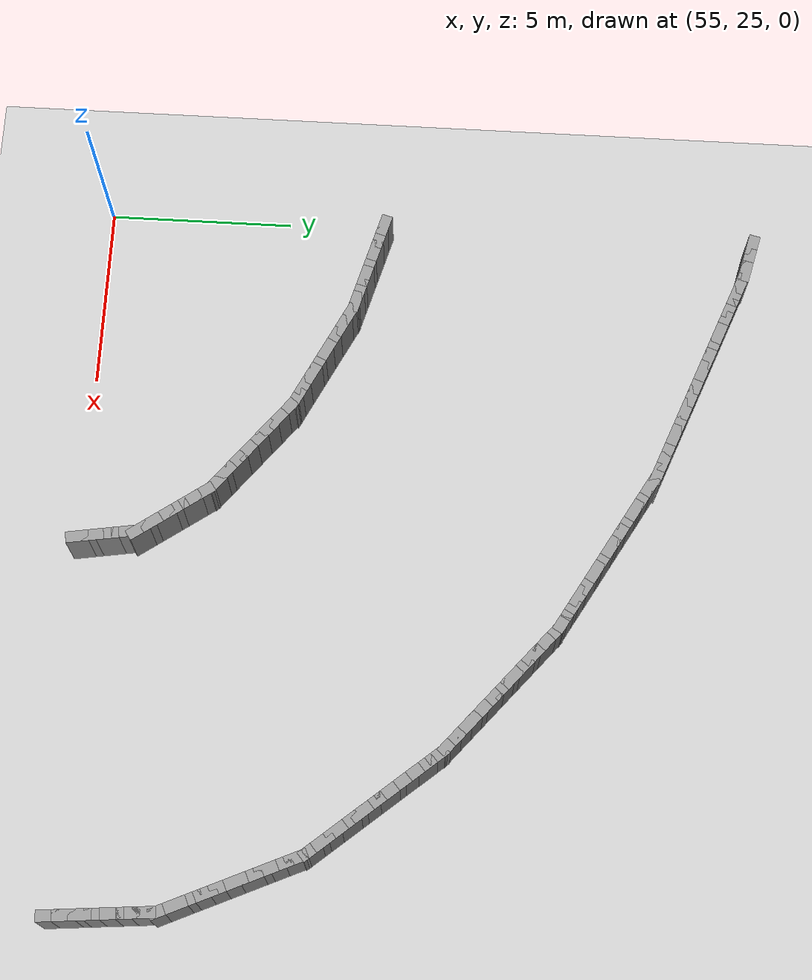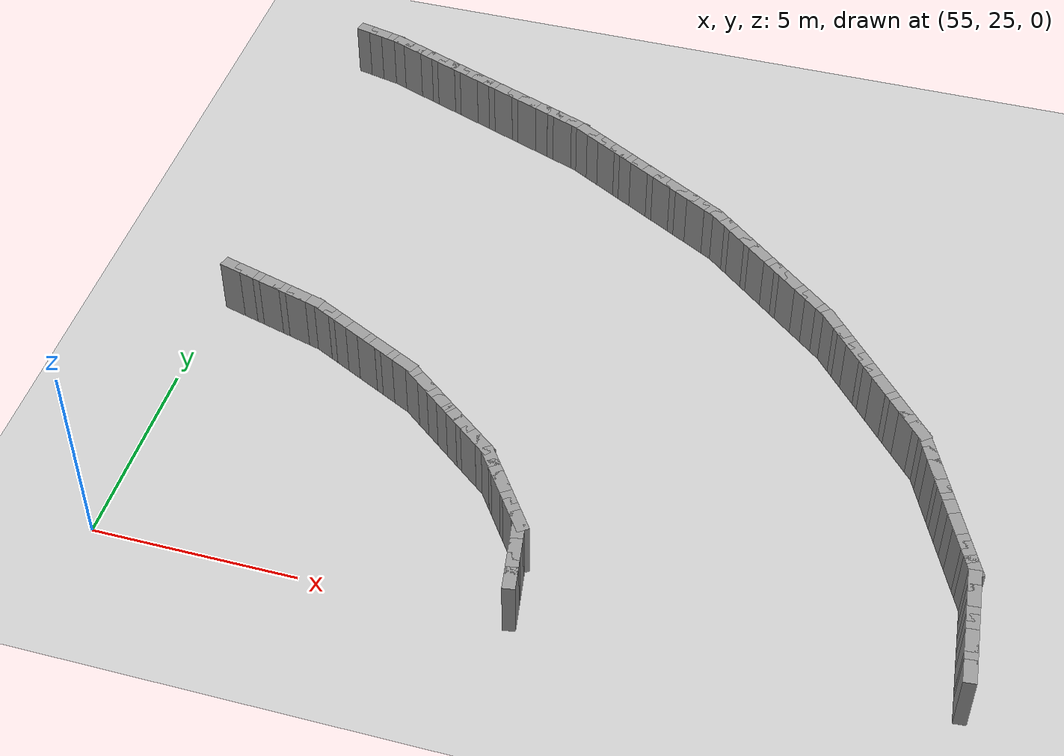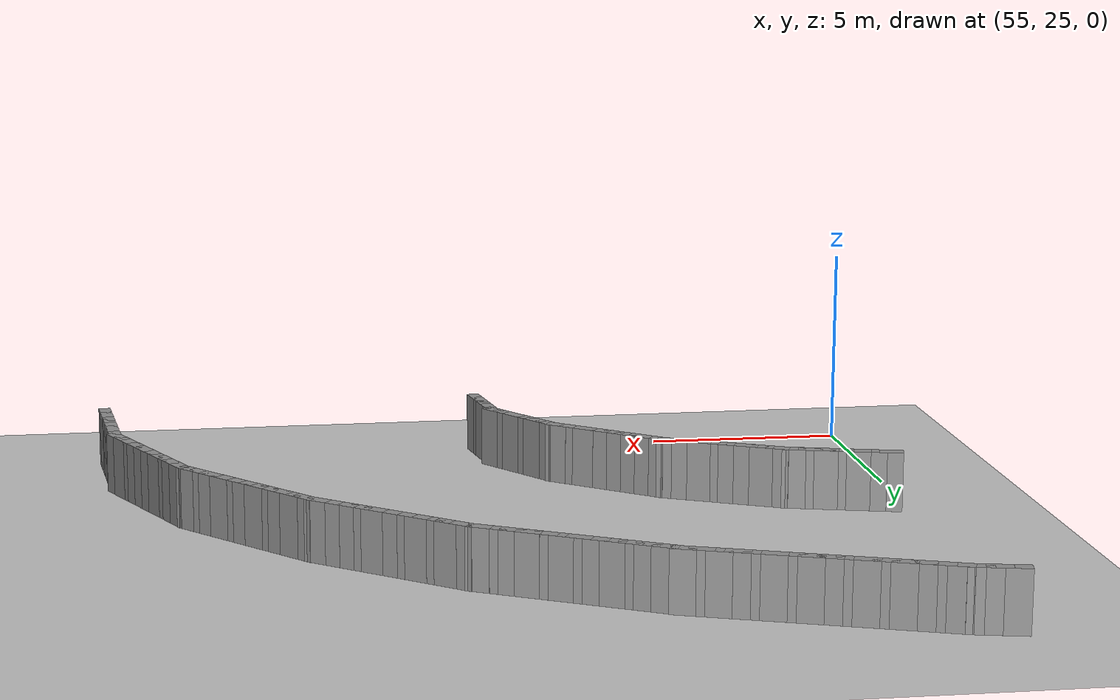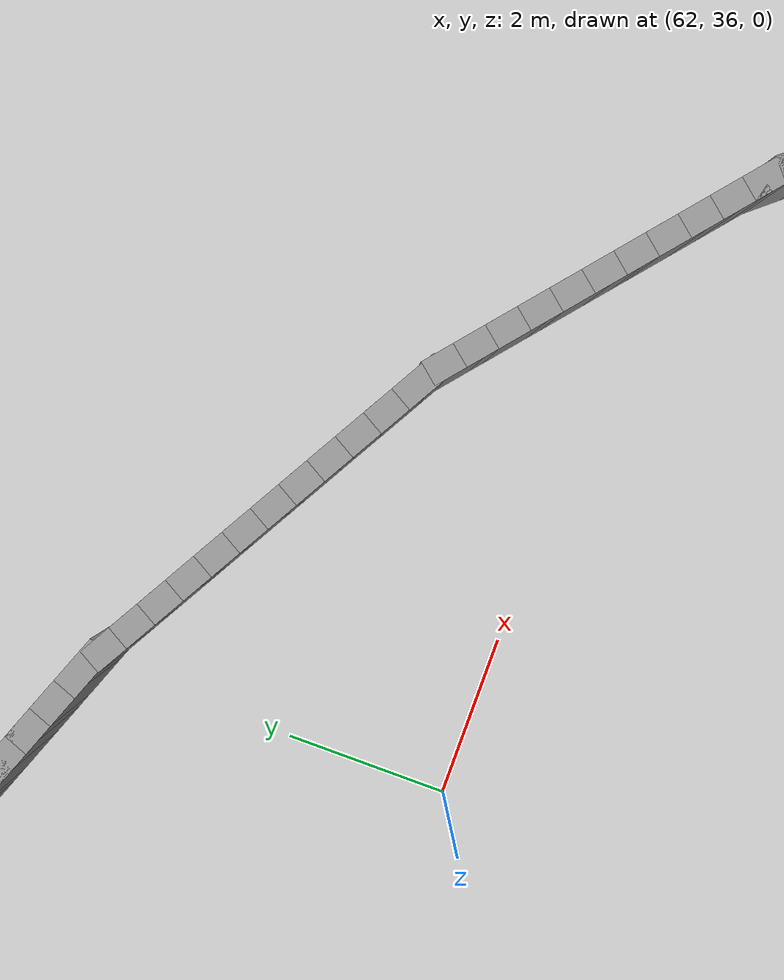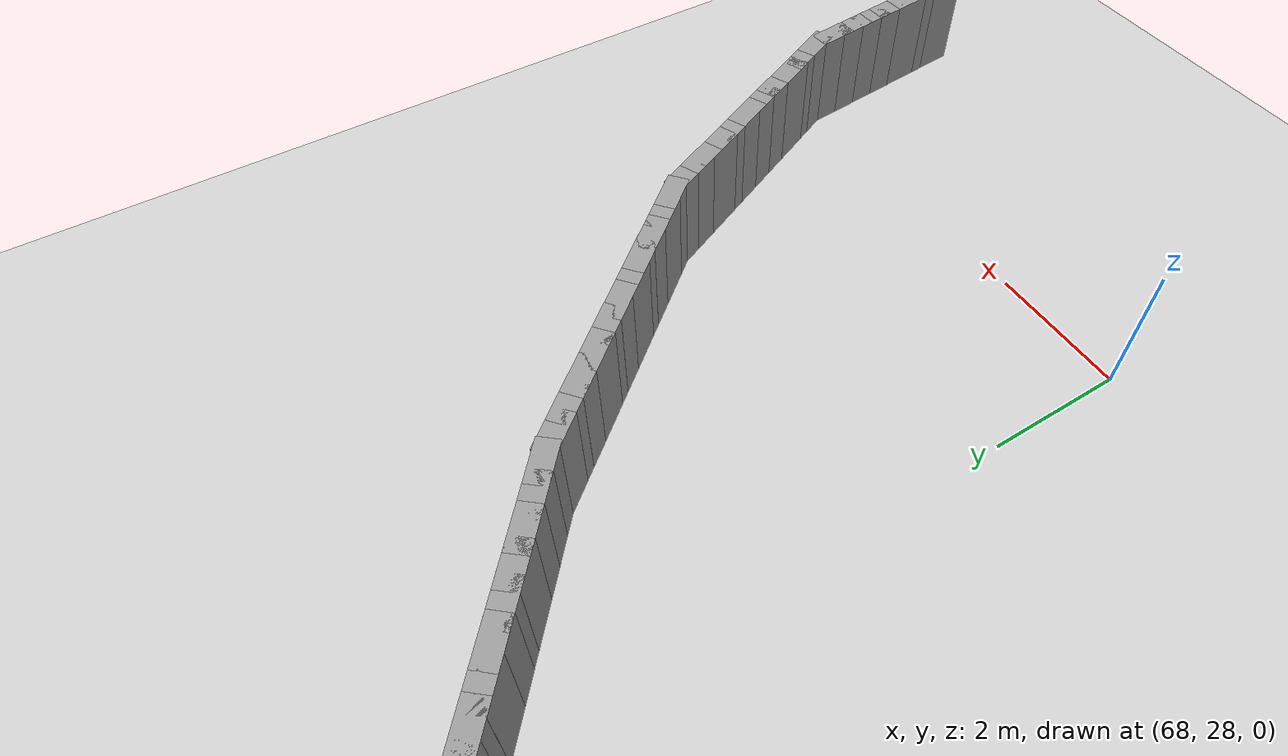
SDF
<sdf version="1.5">
 <world name="ellipse_loop">
  <include><uri>model://sun</uri></include>
  <include><uri>model://ground_plane</uri></include>
  <model name="curbL_227">
   <static>true</static>
   <pose>74.763 25.502 0.750 0 0 1.659</pose>
   <link name="link">
    <collision name="col"><geometry><box><size>0.600 0.300 1.500</size></box></geometry></collision>
    <visual name="vis">
     <geometry><box><size>0.600 0.300 1.500</size></box></geometry>
     <material><ambient>0.6 0.6 0.6 1</ambient><diffuse>0.6 0.6 0.6 1</diffuse></material>
    </visual>
   </link>
  </model>
  <model name="curbL_228">
   <static>true</static>
   <pose>74.728 25.900 0.750 0 0 1.659</pose>
   <link name="link">
    <collision name="col"><geometry><box><size>0.600 0.300 1.500</size></box></geometry></collision>
    <visual name="vis">
     <geometry><box><size>0.600 0.300 1.500</size></box></geometry>
     <material><ambient>0.6 0.6 0.6 1</ambient><diffuse>0.6 0.6 0.6 1</diffuse></material>
    </visual>
   </link>
  </model>
  <model name="curbL_229">
   <static>true</static>
   <pose>74.692 26.298 0.750 0 0 1.659</pose>
   <link name="link">
    <collision name="col"><geometry><box><size>0.600 0.300 1.500</size></box></geometry></collision>
    <visual name="vis">
     <geometry><box><size>0.600 0.300 1.500</size></box></geometry>
     <material><ambient>0.6 0.6 0.6 1</ambient><diffuse>0.6 0.6 0.6 1</diffuse></material>
    </visual>
   </link>
  </model>
  <model name="curbL_230">
   <static>true</static>
   <pose>74.657 26.697 0.750 0 0 1.659</pose>
   <link name="link">
    <collision name="col"><geometry><box><size>0.600 0.300 1.500</size></box></geometry></collision>
    <visual name="vis">
     <geometry><box><size>0.600 0.300 1.500</size></box></geometry>
     <material><ambient>0.6 0.6 0.6 1</ambient><diffuse>0.6 0.6 0.6 1</diffuse></material>
    </visual>
   </link>
  </model>
  <model name="curbL_231">
   <static>true</static>
   <pose>74.622 27.095 0.750 0 0 1.659</pose>
   <link name="link">
    <collision name="col"><geometry><box><size>0.600 0.300 1.500</size></box></geometry></collision>
    <visual name="vis">
     <geometry><box><size>0.600 0.300 1.500</size></box></geometry>
     <material><ambient>0.6 0.6 0.6 1</ambient><diffuse>0.6 0.6 0.6 1</diffuse></material>
    </visual>
   </link>
  </model>
  <model name="curbL_232">
   <static>true</static>
   <pose>74.587 27.494 0.750 0 0 1.659</pose>
   <link name="link">
    <collision name="col"><geometry><box><size>0.600 0.300 1.500</size></box></geometry></collision>
    <visual name="vis">
     <geometry><box><size>0.600 0.300 1.500</size></box></geometry>
     <material><ambient>0.6 0.6 0.6 1</ambient><diffuse>0.6 0.6 0.6 1</diffuse></material>
    </visual>
   </link>
  </model>
  <model name="curbL_233">
   <static>true</static>
   <pose>74.552 27.892 0.750 0 0 1.659</pose>
   <link name="link">
    <collision name="col"><geometry><box><size>0.600 0.300 1.500</size></box></geometry></collision>
    <visual name="vis">
     <geometry><box><size>0.600 0.300 1.500</size></box></geometry>
     <material><ambient>0.6 0.6 0.6 1</ambient><diffuse>0.6 0.6 0.6 1</diffuse></material>
    </visual>
   </link>
  </model>
  <model name="curbL_234">
   <static>true</static>
   <pose>74.487 28.283 0.750 0 0 1.997</pose>
   <link name="link">
    <collision name="col"><geometry><box><size>0.600 0.300 1.500</size></box></geometry></collision>
    <visual name="vis">
     <geometry><box><size>0.600 0.300 1.500</size></box></geometry>
     <material><ambient>0.6 0.6 0.6 1</ambient><diffuse>0.6 0.6 0.6 1</diffuse></material>
    </visual>
   </link>
  </model>
  <model name="curbL_235">
   <static>true</static>
   <pose>74.322 28.647 0.750 0 0 1.997</pose>
   <link name="link">
    <collision name="col"><geometry><box><size>0.600 0.300 1.500</size></box></geometry></collision>
    <visual name="vis">
     <geometry><box><size>0.600 0.300 1.500</size></box></geometry>
     <material><ambient>0.6 0.6 0.6 1</ambient><diffuse>0.6 0.6 0.6 1</diffuse></material>
    </visual>
   </link>
  </model>
  <model name="curbL_236">
   <static>true</static>
   <pose>74.156 29.011 0.750 0 0 1.997</pose>
   <link name="link">
    <collision name="col"><geometry><box><size>0.600 0.300 1.500</size></box></geometry></collision>
    <visual name="vis">
     <geometry><box><size>0.600 0.300 1.500</size></box></geometry>
     <material><ambient>0.6 0.6 0.6 1</ambient><diffuse>0.6 0.6 0.6 1</diffuse></material>
    </visual>
   </link>
  </model>
  <model name="curbL_237">
   <static>true</static>
   <pose>73.991 29.376 0.750 0 0 1.997</pose>
   <link name="link">
    <collision name="col"><geometry><box><size>0.600 0.300 1.500</size></box></geometry></collision>
    <visual name="vis">
     <geometry><box><size>0.600 0.300 1.500</size></box></geometry>
     <material><ambient>0.6 0.6 0.6 1</ambient><diffuse>0.6 0.6 0.6 1</diffuse></material>
    </visual>
   </link>
  </model>
  <model name="curbL_238">
   <static>true</static>
   <pose>73.826 29.740 0.750 0 0 1.997</pose>
   <link name="link">
    <collision name="col"><geometry><box><size>0.600 0.300 1.500</size></box></geometry></collision>
    <visual name="vis">
     <geometry><box><size>0.600 0.300 1.500</size></box></geometry>
     <material><ambient>0.6 0.6 0.6 1</ambient><diffuse>0.6 0.6 0.6 1</diffuse></material>
    </visual>
   </link>
  </model>
  <model name="curbL_239">
   <static>true</static>
   <pose>73.661 30.104 0.750 0 0 1.997</pose>
   <link name="link">
    <collision name="col"><geometry><box><size>0.600 0.300 1.500</size></box></geometry></collision>
    <visual name="vis">
     <geometry><box><size>0.600 0.300 1.500</size></box></geometry>
     <material><ambient>0.6 0.6 0.6 1</ambient><diffuse>0.6 0.6 0.6 1</diffuse></material>
    </visual>
   </link>
  </model>
  <model name="curbL_240">
   <static>true</static>
   <pose>73.496 30.468 0.750 0 0 1.997</pose>
   <link name="link">
    <collision name="col"><geometry><box><size>0.600 0.300 1.500</size></box></geometry></collision>
    <visual name="vis">
     <geometry><box><size>0.600 0.300 1.500</size></box></geometry>
     <material><ambient>0.6 0.6 0.6 1</ambient><diffuse>0.6 0.6 0.6 1</diffuse></material>
    </visual>
   </link>
  </model>
  <model name="curbL_241">
   <static>true</static>
   <pose>73.330 30.833 0.750 0 0 1.997</pose>
   <link name="link">
    <collision name="col"><geometry><box><size>0.600 0.300 1.500</size></box></geometry></collision>
    <visual name="vis">
     <geometry><box><size>0.600 0.300 1.500</size></box></geometry>
     <material><ambient>0.6 0.6 0.6 1</ambient><diffuse>0.6 0.6 0.6 1</diffuse></material>
    </visual>
   </link>
  </model>
  <model name="curbL_242">
   <static>true</static>
   <pose>73.165 31.197 0.750 0 0 1.997</pose>
   <link name="link">
    <collision name="col"><geometry><box><size>0.600 0.300 1.500</size></box></geometry></collision>
    <visual name="vis">
     <geometry><box><size>0.600 0.300 1.500</size></box></geometry>
     <material><ambient>0.6 0.6 0.6 1</ambient><diffuse>0.6 0.6 0.6 1</diffuse></material>
    </visual>
   </link>
  </model>
  <model name="curbL_243">
   <static>true</static>
   <pose>73.000 31.561 0.750 0 0 1.997</pose>
   <link name="link">
    <collision name="col"><geometry><box><size>0.600 0.300 1.500</size></box></geometry></collision>
    <visual name="vis">
     <geometry><box><size>0.600 0.300 1.500</size></box></geometry>
     <material><ambient>0.6 0.6 0.6 1</ambient><diffuse>0.6 0.6 0.6 1</diffuse></material>
    </visual>
   </link>
  </model>
  <model name="curbL_244">
   <static>true</static>
   <pose>72.792 31.898 0.750 0 0 2.273</pose>
   <link name="link">
    <collision name="col"><geometry><box><size>0.600 0.300 1.500</size></box></geometry></collision>
    <visual name="vis">
     <geometry><box><size>0.600 0.300 1.500</size></box></geometry>
     <material><ambient>0.6 0.6 0.6 1</ambient><diffuse>0.6 0.6 0.6 1</diffuse></material>
    </visual>
   </link>
  </model>
  <model name="curbL_245">
   <static>true</static>
   <pose>72.533 32.204 0.750 0 0 2.273</pose>
   <link name="link">
    <collision name="col"><geometry><box><size>0.600 0.300 1.500</size></box></geometry></collision>
    <visual name="vis">
     <geometry><box><size>0.600 0.300 1.500</size></box></geometry>
     <material><ambient>0.6 0.6 0.6 1</ambient><diffuse>0.6 0.6 0.6 1</diffuse></material>
    </visual>
   </link>
  </model>
  <model name="curbL_246">
   <static>true</static>
   <pose>72.275 32.509 0.750 0 0 2.273</pose>
   <link name="link">
    <collision name="col"><geometry><box><size>0.600 0.300 1.500</size></box></geometry></collision>
    <visual name="vis">
     <geometry><box><size>0.600 0.300 1.500</size></box></geometry>
     <material><ambient>0.6 0.6 0.6 1</ambient><diffuse>0.6 0.6 0.6 1</diffuse></material>
    </visual>
   </link>
  </model>
  <model name="curbL_247">
   <static>true</static>
   <pose>72.017 32.815 0.750 0 0 2.273</pose>
   <link name="link">
    <collision name="col"><geometry><box><size>0.600 0.300 1.500</size></box></geometry></collision>
    <visual name="vis">
     <geometry><box><size>0.600 0.300 1.500</size></box></geometry>
     <material><ambient>0.6 0.6 0.6 1</ambient><diffuse>0.6 0.6 0.6 1</diffuse></material>
    </visual>
   </link>
  </model>
  <model name="curbL_248">
   <static>true</static>
   <pose>71.758 33.120 0.750 0 0 2.273</pose>
   <link name="link">
    <collision name="col"><geometry><box><size>0.600 0.300 1.500</size></box></geometry></collision>
    <visual name="vis">
     <geometry><box><size>0.600 0.300 1.500</size></box></geometry>
     <material><ambient>0.6 0.6 0.6 1</ambient><diffuse>0.6 0.6 0.6 1</diffuse></material>
    </visual>
   </link>
  </model>
  <model name="curbL_249">
   <static>true</static>
   <pose>71.500 33.425 0.750 0 0 2.273</pose>
   <link name="link">
    <collision name="col"><geometry><box><size>0.600 0.300 1.500</size></box></geometry></collision>
    <visual name="vis">
     <geometry><box><size>0.600 0.300 1.500</size></box></geometry>
     <material><ambient>0.6 0.6 0.6 1</ambient><diffuse>0.6 0.6 0.6 1</diffuse></material>
    </visual>
   </link>
  </model>
  <model name="curbL_250">
   <static>true</static>
   <pose>71.242 33.731 0.750 0 0 2.273</pose>
   <link name="link">
    <collision name="col"><geometry><box><size>0.600 0.300 1.500</size></box></geometry></collision>
    <visual name="vis">
     <geometry><box><size>0.600 0.300 1.500</size></box></geometry>
     <material><ambient>0.6 0.6 0.6 1</ambient><diffuse>0.6 0.6 0.6 1</diffuse></material>
    </visual>
   </link>
  </model>
  <model name="curbL_251">
   <static>true</static>
   <pose>70.983 34.036 0.750 0 0 2.273</pose>
   <link name="link">
    <collision name="col"><geometry><box><size>0.600 0.300 1.500</size></box></geometry></collision>
    <visual name="vis">
     <geometry><box><size>0.600 0.300 1.500</size></box></geometry>
     <material><ambient>0.6 0.6 0.6 1</ambient><diffuse>0.6 0.6 0.6 1</diffuse></material>
    </visual>
   </link>
  </model>
  <model name="curbL_252">
   <static>true</static>
   <pose>70.725 34.341 0.750 0 0 2.273</pose>
   <link name="link">
    <collision name="col"><geometry><box><size>0.600 0.300 1.500</size></box></geometry></collision>
    <visual name="vis">
     <geometry><box><size>0.600 0.300 1.500</size></box></geometry>
     <material><ambient>0.6 0.6 0.6 1</ambient><diffuse>0.6 0.6 0.6 1</diffuse></material>
    </visual>
   </link>
  </model>
  <model name="curbL_253">
   <static>true</static>
   <pose>70.467 34.647 0.750 0 0 2.273</pose>
   <link name="link">
    <collision name="col"><geometry><box><size>0.600 0.300 1.500</size></box></geometry></collision>
    <visual name="vis">
     <geometry><box><size>0.600 0.300 1.500</size></box></geometry>
     <material><ambient>0.6 0.6 0.6 1</ambient><diffuse>0.6 0.6 0.6 1</diffuse></material>
    </visual>
   </link>
  </model>
  <model name="curbL_254">
   <static>true</static>
   <pose>70.208 34.952 0.750 0 0 2.273</pose>
   <link name="link">
    <collision name="col"><geometry><box><size>0.600 0.300 1.500</size></box></geometry></collision>
    <visual name="vis">
     <geometry><box><size>0.600 0.300 1.500</size></box></geometry>
     <material><ambient>0.6 0.6 0.6 1</ambient><diffuse>0.6 0.6 0.6 1</diffuse></material>
    </visual>
   </link>
  </model>
  <model name="curbL_255">
   <static>true</static>
   <pose>69.924 35.231 0.750 0 0 2.446</pose>
   <link name="link">
    <collision name="col"><geometry><box><size>0.600 0.300 1.500</size></box></geometry></collision>
    <visual name="vis">
     <geometry><box><size>0.600 0.300 1.500</size></box></geometry>
     <material><ambient>0.6 0.6 0.6 1</ambient><diffuse>0.6 0.6 0.6 1</diffuse></material>
    </visual>
   </link>
  </model>
  <model name="curbL_256">
   <static>true</static>
   <pose>69.616 35.488 0.750 0 0 2.446</pose>
   <link name="link">
    <collision name="col"><geometry><box><size>0.600 0.300 1.500</size></box></geometry></collision>
    <visual name="vis">
     <geometry><box><size>0.600 0.300 1.500</size></box></geometry>
     <material><ambient>0.6 0.6 0.6 1</ambient><diffuse>0.6 0.6 0.6 1</diffuse></material>
    </visual>
   </link>
  </model>
  <model name="curbL_257">
   <static>true</static>
   <pose>69.309 35.744 0.750 0 0 2.446</pose>
   <link name="link">
    <collision name="col"><geometry><box><size>0.600 0.300 1.500</size></box></geometry></collision>
    <visual name="vis">
     <geometry><box><size>0.600 0.300 1.500</size></box></geometry>
     <material><ambient>0.6 0.6 0.6 1</ambient><diffuse>0.6 0.6 0.6 1</diffuse></material>
    </visual>
   </link>
  </model>
  <model name="curbL_258">
   <static>true</static>
   <pose>69.002 36.000 0.750 0 0 2.446</pose>
   <link name="link">
    <collision name="col"><geometry><box><size>0.600 0.300 1.500</size></box></geometry></collision>
    <visual name="vis">
     <geometry><box><size>0.600 0.300 1.500</size></box></geometry>
     <material><ambient>0.6 0.6 0.6 1</ambient><diffuse>0.6 0.6 0.6 1</diffuse></material>
    </visual>
   </link>
  </model>
  <model name="curbL_259">
   <static>true</static>
   <pose>68.695 36.257 0.750 0 0 2.446</pose>
   <link name="link">
    <collision name="col"><geometry><box><size>0.600 0.300 1.500</size></box></geometry></collision>
    <visual name="vis">
     <geometry><box><size>0.600 0.300 1.500</size></box></geometry>
     <material><ambient>0.6 0.6 0.6 1</ambient><diffuse>0.6 0.6 0.6 1</diffuse></material>
    </visual>
   </link>
  </model>
  <model name="curbL_260">
   <static>true</static>
   <pose>68.388 36.513 0.750 0 0 2.446</pose>
   <link name="link">
    <collision name="col"><geometry><box><size>0.600 0.300 1.500</size></box></geometry></collision>
    <visual name="vis">
     <geometry><box><size>0.600 0.300 1.500</size></box></geometry>
     <material><ambient>0.6 0.6 0.6 1</ambient><diffuse>0.6 0.6 0.6 1</diffuse></material>
    </visual>
   </link>
  </model>
  <model name="curbL_261">
   <static>true</static>
   <pose>68.081 36.769 0.750 0 0 2.446</pose>
   <link name="link">
    <collision name="col"><geometry><box><size>0.600 0.300 1.500</size></box></geometry></collision>
    <visual name="vis">
     <geometry><box><size>0.600 0.300 1.500</size></box></geometry>
     <material><ambient>0.6 0.6 0.6 1</ambient><diffuse>0.6 0.6 0.6 1</diffuse></material>
    </visual>
   </link>
  </model>
  <model name="curbL_262">
   <static>true</static>
   <pose>67.774 37.026 0.750 0 0 2.446</pose>
   <link name="link">
    <collision name="col"><geometry><box><size>0.600 0.300 1.500</size></box></geometry></collision>
    <visual name="vis">
     <geometry><box><size>0.600 0.300 1.500</size></box></geometry>
     <material><ambient>0.6 0.6 0.6 1</ambient><diffuse>0.6 0.6 0.6 1</diffuse></material>
    </visual>
   </link>
  </model>
  <model name="curbL_263">
   <static>true</static>
   <pose>67.467 37.282 0.750 0 0 2.446</pose>
   <link name="link">
    <collision name="col"><geometry><box><size>0.600 0.300 1.500</size></box></geometry></collision>
    <visual name="vis">
     <geometry><box><size>0.600 0.300 1.500</size></box></geometry>
     <material><ambient>0.6 0.6 0.6 1</ambient><diffuse>0.6 0.6 0.6 1</diffuse></material>
    </visual>
   </link>
  </model>
  <model name="curbL_264">
   <static>true</static>
   <pose>67.160 37.539 0.750 0 0 2.446</pose>
   <link name="link">
    <collision name="col"><geometry><box><size>0.600 0.300 1.500</size></box></geometry></collision>
    <visual name="vis">
     <geometry><box><size>0.600 0.300 1.500</size></box></geometry>
     <material><ambient>0.6 0.6 0.6 1</ambient><diffuse>0.6 0.6 0.6 1</diffuse></material>
    </visual>
   </link>
  </model>
  <model name="curbL_265">
   <static>true</static>
   <pose>66.853 37.795 0.750 0 0 2.446</pose>
   <link name="link">
    <collision name="col"><geometry><box><size>0.600 0.300 1.500</size></box></geometry></collision>
    <visual name="vis">
     <geometry><box><size>0.600 0.300 1.500</size></box></geometry>
     <material><ambient>0.6 0.6 0.6 1</ambient><diffuse>0.6 0.6 0.6 1</diffuse></material>
    </visual>
   </link>
  </model>
  <model name="curbL_266">
   <static>true</static>
   <pose>66.524 38.020 0.750 0 0 2.625</pose>
   <link name="link">
    <collision name="col"><geometry><box><size>0.600 0.300 1.500</size></box></geometry></collision>
    <visual name="vis">
     <geometry><box><size>0.600 0.300 1.500</size></box></geometry>
     <material><ambient>0.6 0.6 0.6 1</ambient><diffuse>0.6 0.6 0.6 1</diffuse></material>
    </visual>
   </link>
  </model>
  <model name="curbL_267">
   <static>true</static>
   <pose>66.176 38.217 0.750 0 0 2.625</pose>
   <link name="link">
    <collision name="col"><geometry><box><size>0.600 0.300 1.500</size></box></geometry></collision>
    <visual name="vis">
     <geometry><box><size>0.600 0.300 1.500</size></box></geometry>
     <material><ambient>0.6 0.6 0.6 1</ambient><diffuse>0.6 0.6 0.6 1</diffuse></material>
    </visual>
   </link>
  </model>
  <model name="curbL_268">
   <static>true</static>
   <pose>65.829 38.415 0.750 0 0 2.625</pose>
   <link name="link">
    <collision name="col"><geometry><box><size>0.600 0.300 1.500</size></box></geometry></collision>
    <visual name="vis">
     <geometry><box><size>0.600 0.300 1.500</size></box></geometry>
     <material><ambient>0.6 0.6 0.6 1</ambient><diffuse>0.6 0.6 0.6 1</diffuse></material>
    </visual>
   </link>
  </model>
  <model name="curbL_269">
   <static>true</static>
   <pose>65.481 38.613 0.750 0 0 2.625</pose>
   <link name="link">
    <collision name="col"><geometry><box><size>0.600 0.300 1.500</size></box></geometry></collision>
    <visual name="vis">
     <geometry><box><size>0.600 0.300 1.500</size></box></geometry>
     <material><ambient>0.6 0.6 0.6 1</ambient><diffuse>0.6 0.6 0.6 1</diffuse></material>
    </visual>
   </link>
  </model>
  <model name="curbL_270">
   <static>true</static>
   <pose>65.133 38.810 0.750 0 0 2.625</pose>
   <link name="link">
    <collision name="col"><geometry><box><size>0.600 0.300 1.500</size></box></geometry></collision>
    <visual name="vis">
     <geometry><box><size>0.600 0.300 1.500</size></box></geometry>
     <material><ambient>0.6 0.6 0.6 1</ambient><diffuse>0.6 0.6 0.6 1</diffuse></material>
    </visual>
   </link>
  </model>
  <model name="curbL_271">
   <static>true</static>
   <pose>64.785 39.008 0.750 0 0 2.625</pose>
   <link name="link">
    <collision name="col"><geometry><box><size>0.600 0.300 1.500</size></box></geometry></collision>
    <visual name="vis">
     <geometry><box><size>0.600 0.300 1.500</size></box></geometry>
     <material><ambient>0.6 0.6 0.6 1</ambient><diffuse>0.6 0.6 0.6 1</diffuse></material>
    </visual>
   </link>
  </model>
  <model name="curbL_272">
   <static>true</static>
   <pose>64.438 39.205 0.750 0 0 2.625</pose>
   <link name="link">
    <collision name="col"><geometry><box><size>0.600 0.300 1.500</size></box></geometry></collision>
    <visual name="vis">
     <geometry><box><size>0.600 0.300 1.500</size></box></geometry>
     <material><ambient>0.6 0.6 0.6 1</ambient><diffuse>0.6 0.6 0.6 1</diffuse></material>
    </visual>
   </link>
  </model>
  <model name="curbL_273">
   <static>true</static>
   <pose>64.090 39.403 0.750 0 0 2.625</pose>
   <link name="link">
    <collision name="col"><geometry><box><size>0.600 0.300 1.500</size></box></geometry></collision>
    <visual name="vis">
     <geometry><box><size>0.600 0.300 1.500</size></box></geometry>
     <material><ambient>0.6 0.6 0.6 1</ambient><diffuse>0.6 0.6 0.6 1</diffuse></material>
    </visual>
   </link>
  </model>
  <model name="curbL_274">
   <static>true</static>
   <pose>63.742 39.601 0.750 0 0 2.625</pose>
   <link name="link">
    <collision name="col"><geometry><box><size>0.600 0.300 1.500</size></box></geometry></collision>
    <visual name="vis">
     <geometry><box><size>0.600 0.300 1.500</size></box></geometry>
     <material><ambient>0.6 0.6 0.6 1</ambient><diffuse>0.6 0.6 0.6 1</diffuse></material>
    </visual>
   </link>
  </model>
  <model name="curbL_275">
   <static>true</static>
   <pose>63.394 39.798 0.750 0 0 2.625</pose>
   <link name="link">
    <collision name="col"><geometry><box><size>0.600 0.300 1.500</size></box></geometry></collision>
    <visual name="vis">
     <geometry><box><size>0.600 0.300 1.500</size></box></geometry>
     <material><ambient>0.6 0.6 0.6 1</ambient><diffuse>0.6 0.6 0.6 1</diffuse></material>
    </visual>
   </link>
  </model>
  <model name="curbL_276">
   <static>true</static>
   <pose>63.047 39.996 0.750 0 0 2.625</pose>
   <link name="link">
    <collision name="col"><geometry><box><size>0.600 0.300 1.500</size></box></geometry></collision>
    <visual name="vis">
     <geometry><box><size>0.600 0.300 1.500</size></box></geometry>
     <material><ambient>0.6 0.6 0.6 1</ambient><diffuse>0.6 0.6 0.6 1</diffuse></material>
    </visual>
   </link>
  </model>
  <model name="curbL_277">
   <static>true</static>
   <pose>62.699 40.194 0.750 0 0 2.625</pose>
   <link name="link">
    <collision name="col"><geometry><box><size>0.600 0.300 1.500</size></box></geometry></collision>
    <visual name="vis">
     <geometry><box><size>0.600 0.300 1.500</size></box></geometry>
     <material><ambient>0.6 0.6 0.6 1</ambient><diffuse>0.6 0.6 0.6 1</diffuse></material>
    </visual>
   </link>
  </model>
  <model name="curbL_278">
   <static>true</static>
   <pose>62.349 40.387 0.750 0 0 2.776</pose>
   <link name="link">
    <collision name="col"><geometry><box><size>0.600 0.300 1.500</size></box></geometry></collision>
    <visual name="vis">
     <geometry><box><size>0.600 0.300 1.500</size></box></geometry>
     <material><ambient>0.6 0.6 0.6 1</ambient><diffuse>0.6 0.6 0.6 1</diffuse></material>
    </visual>
   </link>
  </model>
  <model name="curbL_279">
   <static>true</static>
   <pose>61.975 40.530 0.750 0 0 2.776</pose>
   <link name="link">
    <collision name="col"><geometry><box><size>0.600 0.300 1.500</size></box></geometry></collision>
    <visual name="vis">
     <geometry><box><size>0.600 0.300 1.500</size></box></geometry>
     <material><ambient>0.6 0.6 0.6 1</ambient><diffuse>0.6 0.6 0.6 1</diffuse></material>
    </visual>
   </link>
  </model>
  <model name="curbL_280">
   <static>true</static>
   <pose>61.602 40.673 0.750 0 0 2.776</pose>
   <link name="link">
    <collision name="col"><geometry><box><size>0.600 0.300 1.500</size></box></geometry></collision>
    <visual name="vis">
     <geometry><box><size>0.600 0.300 1.500</size></box></geometry>
     <material><ambient>0.6 0.6 0.6 1</ambient><diffuse>0.6 0.6 0.6 1</diffuse></material>
    </visual>
   </link>
  </model>
  <model name="curbL_281">
   <static>true</static>
   <pose>61.228 40.815 0.750 0 0 2.776</pose>
   <link name="link">
    <collision name="col"><geometry><box><size>0.600 0.300 1.500</size></box></geometry></collision>
    <visual name="vis">
     <geometry><box><size>0.600 0.300 1.500</size></box></geometry>
     <material><ambient>0.6 0.6 0.6 1</ambient><diffuse>0.6 0.6 0.6 1</diffuse></material>
    </visual>
   </link>
  </model>
  <model name="curbL_282">
   <static>true</static>
   <pose>60.854 40.958 0.750 0 0 2.776</pose>
   <link name="link">
    <collision name="col"><geometry><box><size>0.600 0.300 1.500</size></box></geometry></collision>
    <visual name="vis">
     <geometry><box><size>0.600 0.300 1.500</size></box></geometry>
     <material><ambient>0.6 0.6 0.6 1</ambient><diffuse>0.6 0.6 0.6 1</diffuse></material>
    </visual>
   </link>
  </model>
  <model name="curbL_283">
   <static>true</static>
   <pose>60.481 41.101 0.750 0 0 2.776</pose>
   <link name="link">
    <collision name="col"><geometry><box><size>0.600 0.300 1.500</size></box></geometry></collision>
    <visual name="vis">
     <geometry><box><size>0.600 0.300 1.500</size></box></geometry>
     <material><ambient>0.6 0.6 0.6 1</ambient><diffuse>0.6 0.6 0.6 1</diffuse></material>
    </visual>
   </link>
  </model>
  <model name="curbL_284">
   <static>true</static>
   <pose>60.107 41.244 0.750 0 0 2.776</pose>
   <link name="link">
    <collision name="col"><geometry><box><size>0.600 0.300 1.500</size></box></geometry></collision>
    <visual name="vis">
     <geometry><box><size>0.600 0.300 1.500</size></box></geometry>
     <material><ambient>0.6 0.6 0.6 1</ambient><diffuse>0.6 0.6 0.6 1</diffuse></material>
    </visual>
   </link>
  </model>
  <model name="curbL_285">
   <static>true</static>
   <pose>59.734 41.387 0.750 0 0 2.776</pose>
   <link name="link">
    <collision name="col"><geometry><box><size>0.600 0.300 1.500</size></box></geometry></collision>
    <visual name="vis">
     <geometry><box><size>0.600 0.300 1.500</size></box></geometry>
     <material><ambient>0.6 0.6 0.6 1</ambient><diffuse>0.6 0.6 0.6 1</diffuse></material>
    </visual>
   </link>
  </model>
  <model name="curbL_286">
   <static>true</static>
   <pose>59.360 41.530 0.750 0 0 2.776</pose>
   <link name="link">
    <collision name="col"><geometry><box><size>0.600 0.300 1.500</size></box></geometry></collision>
    <visual name="vis">
     <geometry><box><size>0.600 0.300 1.500</size></box></geometry>
     <material><ambient>0.6 0.6 0.6 1</ambient><diffuse>0.6 0.6 0.6 1</diffuse></material>
    </visual>
   </link>
  </model>
  <model name="curbL_287">
   <static>true</static>
   <pose>58.986 41.673 0.750 0 0 2.776</pose>
   <link name="link">
    <collision name="col"><geometry><box><size>0.600 0.300 1.500</size></box></geometry></collision>
    <visual name="vis">
     <geometry><box><size>0.600 0.300 1.500</size></box></geometry>
     <material><ambient>0.6 0.6 0.6 1</ambient><diffuse>0.6 0.6 0.6 1</diffuse></material>
    </visual>
   </link>
  </model>
  <model name="curbL_288">
   <static>true</static>
   <pose>58.613 41.816 0.750 0 0 2.776</pose>
   <link name="link">
    <collision name="col"><geometry><box><size>0.600 0.300 1.500</size></box></geometry></collision>
    <visual name="vis">
     <geometry><box><size>0.600 0.300 1.500</size></box></geometry>
     <material><ambient>0.6 0.6 0.6 1</ambient><diffuse>0.6 0.6 0.6 1</diffuse></material>
    </visual>
   </link>
  </model>
  <model name="curbL_289">
   <static>true</static>
   <pose>58.239 41.958 0.750 0 0 2.776</pose>
   <link name="link">
    <collision name="col"><geometry><box><size>0.600 0.300 1.500</size></box></geometry></collision>
    <visual name="vis">
     <geometry><box><size>0.600 0.300 1.500</size></box></geometry>
     <material><ambient>0.6 0.6 0.6 1</ambient><diffuse>0.6 0.6 0.6 1</diffuse></material>
    </visual>
   </link>
  </model>
  <model name="curbL_290">
   <static>true</static>
   <pose>57.866 42.101 0.750 0 0 2.776</pose>
   <link name="link">
    <collision name="col"><geometry><box><size>0.600 0.300 1.500</size></box></geometry></collision>
    <visual name="vis">
     <geometry><box><size>0.600 0.300 1.500</size></box></geometry>
     <material><ambient>0.6 0.6 0.6 1</ambient><diffuse>0.6 0.6 0.6 1</diffuse></material>
    </visual>
   </link>
  </model>
  <model name="curbL_291">
   <static>true</static>
   <pose>57.492 42.244 0.750 0 0 2.776</pose>
   <link name="link">
    <collision name="col"><geometry><box><size>0.600 0.300 1.500</size></box></geometry></collision>
    <visual name="vis">
     <geometry><box><size>0.600 0.300 1.500</size></box></geometry>
     <material><ambient>0.6 0.6 0.6 1</ambient><diffuse>0.6 0.6 0.6 1</diffuse></material>
    </visual>
   </link>
  </model>
  <model name="curbL_292">
   <static>true</static>
   <pose>57.118 42.387 0.750 0 0 2.776</pose>
   <link name="link">
    <collision name="col"><geometry><box><size>0.600 0.300 1.500</size></box></geometry></collision>
    <visual name="vis">
     <geometry><box><size>0.600 0.300 1.500</size></box></geometry>
     <material><ambient>0.6 0.6 0.6 1</ambient><diffuse>0.6 0.6 0.6 1</diffuse></material>
    </visual>
   </link>
  </model>
  <model name="curbL_293">
   <static>true</static>
   <pose>56.745 42.530 0.750 0 0 2.776</pose>
   <link name="link">
    <collision name="col"><geometry><box><size>0.600 0.300 1.500</size></box></geometry></collision>
    <visual name="vis">
     <geometry><box><size>0.600 0.300 1.500</size></box></geometry>
     <material><ambient>0.6 0.6 0.6 1</ambient><diffuse>0.6 0.6 0.6 1</diffuse></material>
    </visual>
   </link>
  </model>
  <model name="curbL_294">
   <static>true</static>
   <pose>56.366 42.656 0.750 0 0 2.910</pose>
   <link name="link">
    <collision name="col"><geometry><box><size>0.600 0.300 1.500</size></box></geometry></collision>
    <visual name="vis">
     <geometry><box><size>0.600 0.300 1.500</size></box></geometry>
     <material><ambient>0.6 0.6 0.6 1</ambient><diffuse>0.6 0.6 0.6 1</diffuse></material>
    </visual>
   </link>
  </model>
  <model name="curbL_295">
   <static>true</static>
   <pose>55.977 42.748 0.750 0 0 2.910</pose>
   <link name="link">
    <collision name="col"><geometry><box><size>0.600 0.300 1.500</size></box></geometry></collision>
    <visual name="vis">
     <geometry><box><size>0.600 0.300 1.500</size></box></geometry>
     <material><ambient>0.6 0.6 0.6 1</ambient><diffuse>0.6 0.6 0.6 1</diffuse></material>
    </visual>
   </link>
  </model>
  <model name="curbL_296">
   <static>true</static>
   <pose>55.587 42.840 0.750 0 0 2.910</pose>
   <link name="link">
    <collision name="col"><geometry><box><size>0.600 0.300 1.500</size></box></geometry></collision>
    <visual name="vis">
     <geometry><box><size>0.600 0.300 1.500</size></box></geometry>
     <material><ambient>0.6 0.6 0.6 1</ambient><diffuse>0.6 0.6 0.6 1</diffuse></material>
    </visual>
   </link>
  </model>
  <model name="curbR_111">
   <static>true</static>
   <pose>55.536 32.713 0.750 0 0 -0.269</pose>
   <link name="link">
    <collision name="col"><geometry><box><size>0.600 0.300 1.500</size></box></geometry></collision>
    <visual name="vis">
     <geometry><box><size>0.600 0.300 1.500</size></box></geometry>
     <material><ambient>0.6 0.6 0.6 1</ambient><diffuse>0.6 0.6 0.6 1</diffuse></material>
    </visual>
   </link>
  </model>
  <model name="curbR_112">
   <static>true</static>
   <pose>55.921 32.607 0.750 0 0 -0.269</pose>
   <link name="link">
    <collision name="col"><geometry><box><size>0.600 0.300 1.500</size></box></geometry></collision>
    <visual name="vis">
     <geometry><box><size>0.600 0.300 1.500</size></box></geometry>
     <material><ambient>0.6 0.6 0.6 1</ambient><diffuse>0.6 0.6 0.6 1</diffuse></material>
    </visual>
   </link>
  </model>
  <model name="curbR_113">
   <static>true</static>
   <pose>56.307 32.501 0.750 0 0 -0.269</pose>
   <link name="link">
    <collision name="col"><geometry><box><size>0.600 0.300 1.500</size></box></geometry></collision>
    <visual name="vis">
     <geometry><box><size>0.600 0.300 1.500</size></box></geometry>
     <material><ambient>0.6 0.6 0.6 1</ambient><diffuse>0.6 0.6 0.6 1</diffuse></material>
    </visual>
   </link>
  </model>
  <model name="curbR_114">
   <static>true</static>
   <pose>56.693 32.394 0.750 0 0 -0.269</pose>
   <link name="link">
    <collision name="col"><geometry><box><size>0.600 0.300 1.500</size></box></geometry></collision>
    <visual name="vis">
     <geometry><box><size>0.600 0.300 1.500</size></box></geometry>
     <material><ambient>0.6 0.6 0.6 1</ambient><diffuse>0.6 0.6 0.6 1</diffuse></material>
    </visual>
   </link>
  </model>
  <model name="curbR_115">
   <static>true</static>
   <pose>57.078 32.288 0.750 0 0 -0.269</pose>
   <link name="link">
    <collision name="col"><geometry><box><size>0.600 0.300 1.500</size></box></geometry></collision>
    <visual name="vis">
     <geometry><box><size>0.600 0.300 1.500</size></box></geometry>
     <material><ambient>0.6 0.6 0.6 1</ambient><diffuse>0.6 0.6 0.6 1</diffuse></material>
    </visual>
   </link>
  </model>
  <model name="curbR_116">
   <static>true</static>
   <pose>57.464 32.181 0.750 0 0 -0.269</pose>
   <link name="link">
    <collision name="col"><geometry><box><size>0.600 0.300 1.500</size></box></geometry></collision>
    <visual name="vis">
     <geometry><box><size>0.600 0.300 1.500</size></box></geometry>
     <material><ambient>0.6 0.6 0.6 1</ambient><diffuse>0.6 0.6 0.6 1</diffuse></material>
    </visual>
   </link>
  </model>
  <model name="curbR_117">
   <static>true</static>
   <pose>57.849 32.075 0.750 0 0 -0.269</pose>
   <link name="link">
    <collision name="col"><geometry><box><size>0.600 0.300 1.500</size></box></geometry></collision>
    <visual name="vis">
     <geometry><box><size>0.600 0.300 1.500</size></box></geometry>
     <material><ambient>0.6 0.6 0.6 1</ambient><diffuse>0.6 0.6 0.6 1</diffuse></material>
    </visual>
   </link>
  </model>
  <model name="curbR_118">
   <static>true</static>
   <pose>58.220 31.930 0.750 0 0 -0.463</pose>
   <link name="link">
    <collision name="col"><geometry><box><size>0.600 0.300 1.500</size></box></geometry></collision>
    <visual name="vis">
     <geometry><box><size>0.600 0.300 1.500</size></box></geometry>
     <material><ambient>0.6 0.6 0.6 1</ambient><diffuse>0.6 0.6 0.6 1</diffuse></material>
    </visual>
   </link>
  </model>
  <model name="curbR_119">
   <static>true</static>
   <pose>58.578 31.752 0.750 0 0 -0.463</pose>
   <link name="link">
    <collision name="col"><geometry><box><size>0.600 0.300 1.500</size></box></geometry></collision>
    <visual name="vis">
     <geometry><box><size>0.600 0.300 1.500</size></box></geometry>
     <material><ambient>0.6 0.6 0.6 1</ambient><diffuse>0.6 0.6 0.6 1</diffuse></material>
    </visual>
   </link>
  </model>
  <model name="curbR_120">
   <static>true</static>
   <pose>58.936 31.573 0.750 0 0 -0.463</pose>
   <link name="link">
    <collision name="col"><geometry><box><size>0.600 0.300 1.500</size></box></geometry></collision>
    <visual name="vis">
     <geometry><box><size>0.600 0.300 1.500</size></box></geometry>
     <material><ambient>0.6 0.6 0.6 1</ambient><diffuse>0.6 0.6 0.6 1</diffuse></material>
    </visual>
   </link>
  </model>
  <model name="curbR_121">
   <static>true</static>
   <pose>59.294 31.394 0.750 0 0 -0.463</pose>
   <link name="link">
    <collision name="col"><geometry><box><size>0.600 0.300 1.500</size></box></geometry></collision>
    <visual name="vis">
     <geometry><box><size>0.600 0.300 1.500</size></box></geometry>
     <material><ambient>0.6 0.6 0.6 1</ambient><diffuse>0.6 0.6 0.6 1</diffuse></material>
    </visual>
   </link>
  </model>
  <model name="curbR_122">
   <static>true</static>
   <pose>59.652 31.215 0.750 0 0 -0.463</pose>
   <link name="link">
    <collision name="col"><geometry><box><size>0.600 0.300 1.500</size></box></geometry></collision>
    <visual name="vis">
     <geometry><box><size>0.600 0.300 1.500</size></box></geometry>
     <material><ambient>0.6 0.6 0.6 1</ambient><diffuse>0.6 0.6 0.6 1</diffuse></material>
    </visual>
   </link>
  </model>
  <model name="curbR_123">
   <static>true</static>
   <pose>60.009 31.037 0.750 0 0 -0.463</pose>
   <link name="link">
    <collision name="col"><geometry><box><size>0.600 0.300 1.500</size></box></geometry></collision>
    <visual name="vis">
     <geometry><box><size>0.600 0.300 1.500</size></box></geometry>
     <material><ambient>0.6 0.6 0.6 1</ambient><diffuse>0.6 0.6 0.6 1</diffuse></material>
    </visual>
   </link>
  </model>
  <model name="curbR_124">
   <static>true</static>
   <pose>60.367 30.858 0.750 0 0 -0.463</pose>
   <link name="link">
    <collision name="col"><geometry><box><size>0.600 0.300 1.500</size></box></geometry></collision>
    <visual name="vis">
     <geometry><box><size>0.600 0.300 1.500</size></box></geometry>
     <material><ambient>0.6 0.6 0.6 1</ambient><diffuse>0.6 0.6 0.6 1</diffuse></material>
    </visual>
   </link>
  </model>
  <model name="curbR_125">
   <static>true</static>
   <pose>60.725 30.679 0.750 0 0 -0.463</pose>
   <link name="link">
    <collision name="col"><geometry><box><size>0.600 0.300 1.500</size></box></geometry></collision>
    <visual name="vis">
     <geometry><box><size>0.600 0.300 1.500</size></box></geometry>
     <material><ambient>0.6 0.6 0.6 1</ambient><diffuse>0.6 0.6 0.6 1</diffuse></material>
    </visual>
   </link>
  </model>
  <model name="curbR_126">
   <static>true</static>
   <pose>61.056 30.457 0.750 0 0 -0.674</pose>
   <link name="link">
    <collision name="col"><geometry><box><size>0.600 0.300 1.500</size></box></geometry></collision>
    <visual name="vis">
     <geometry><box><size>0.600 0.300 1.500</size></box></geometry>
     <material><ambient>0.6 0.6 0.6 1</ambient><diffuse>0.6 0.6 0.6 1</diffuse></material>
    </visual>
   </link>
  </model>
  <model name="curbR_127">
   <static>true</static>
   <pose>61.368 30.208 0.750 0 0 -0.674</pose>
   <link name="link">
    <collision name="col"><geometry><box><size>0.600 0.300 1.500</size></box></geometry></collision>
    <visual name="vis">
     <geometry><box><size>0.600 0.300 1.500</size></box></geometry>
     <material><ambient>0.6 0.6 0.6 1</ambient><diffuse>0.6 0.6 0.6 1</diffuse></material>
    </visual>
   </link>
  </model>
  <model name="curbR_128">
   <static>true</static>
   <pose>61.681 29.958 0.750 0 0 -0.674</pose>
   <link name="link">
    <collision name="col"><geometry><box><size>0.600 0.300 1.500</size></box></geometry></collision>
    <visual name="vis">
     <geometry><box><size>0.600 0.300 1.500</size></box></geometry>
     <material><ambient>0.6 0.6 0.6 1</ambient><diffuse>0.6 0.6 0.6 1</diffuse></material>
    </visual>
   </link>
  </model>
  <model name="curbR_129">
   <static>true</static>
   <pose>61.993 29.709 0.750 0 0 -0.674</pose>
   <link name="link">
    <collision name="col"><geometry><box><size>0.600 0.300 1.500</size></box></geometry></collision>
    <visual name="vis">
     <geometry><box><size>0.600 0.300 1.500</size></box></geometry>
     <material><ambient>0.6 0.6 0.6 1</ambient><diffuse>0.6 0.6 0.6 1</diffuse></material>
    </visual>
   </link>
  </model>
  <model name="curbR_130">
   <static>true</static>
   <pose>62.306 29.459 0.750 0 0 -0.674</pose>
   <link name="link">
    <collision name="col"><geometry><box><size>0.600 0.300 1.500</size></box></geometry></collision>
    <visual name="vis">
     <geometry><box><size>0.600 0.300 1.500</size></box></geometry>
     <material><ambient>0.6 0.6 0.6 1</ambient><diffuse>0.6 0.6 0.6 1</diffuse></material>
    </visual>
   </link>
  </model>
  <model name="curbR_131">
   <static>true</static>
   <pose>62.619 29.210 0.750 0 0 -0.674</pose>
   <link name="link">
    <collision name="col"><geometry><box><size>0.600 0.300 1.500</size></box></geometry></collision>
    <visual name="vis">
     <geometry><box><size>0.600 0.300 1.500</size></box></geometry>
     <material><ambient>0.6 0.6 0.6 1</ambient><diffuse>0.6 0.6 0.6 1</diffuse></material>
    </visual>
   </link>
  </model>
  <model name="curbR_132">
   <static>true</static>
   <pose>62.931 28.960 0.750 0 0 -0.674</pose>
   <link name="link">
    <collision name="col"><geometry><box><size>0.600 0.300 1.500</size></box></geometry></collision>
    <visual name="vis">
     <geometry><box><size>0.600 0.300 1.500</size></box></geometry>
     <material><ambient>0.6 0.6 0.6 1</ambient><diffuse>0.6 0.6 0.6 1</diffuse></material>
    </visual>
   </link>
  </model>
  <model name="curbR_133">
   <static>true</static>
   <pose>63.244 28.711 0.750 0 0 -0.674</pose>
   <link name="link">
    <collision name="col"><geometry><box><size>0.600 0.300 1.500</size></box></geometry></collision>
    <visual name="vis">
     <geometry><box><size>0.600 0.300 1.500</size></box></geometry>
     <material><ambient>0.6 0.6 0.6 1</ambient><diffuse>0.6 0.6 0.6 1</diffuse></material>
    </visual>
   </link>
  </model>
  <model name="curbR_134">
   <static>true</static>
   <pose>63.510 28.417 0.750 0 0 -0.957</pose>
   <link name="link">
    <collision name="col"><geometry><box><size>0.600 0.300 1.500</size></box></geometry></collision>
    <visual name="vis">
     <geometry><box><size>0.600 0.300 1.500</size></box></geometry>
     <material><ambient>0.6 0.6 0.6 1</ambient><diffuse>0.6 0.6 0.6 1</diffuse></material>
    </visual>
   </link>
  </model>
  <model name="curbR_135">
   <static>true</static>
   <pose>63.741 28.091 0.750 0 0 -0.957</pose>
   <link name="link">
    <collision name="col"><geometry><box><size>0.600 0.300 1.500</size></box></geometry></collision>
    <visual name="vis">
     <geometry><box><size>0.600 0.300 1.500</size></box></geometry>
     <material><ambient>0.6 0.6 0.6 1</ambient><diffuse>0.6 0.6 0.6 1</diffuse></material>
    </visual>
   </link>
  </model>
  <model name="curbR_136">
   <static>true</static>
   <pose>63.971 27.764 0.750 0 0 -0.957</pose>
   <link name="link">
    <collision name="col"><geometry><box><size>0.600 0.300 1.500</size></box></geometry></collision>
    <visual name="vis">
     <geometry><box><size>0.600 0.300 1.500</size></box></geometry>
     <material><ambient>0.6 0.6 0.6 1</ambient><diffuse>0.6 0.6 0.6 1</diffuse></material>
    </visual>
   </link>
  </model>
  <model name="curbR_137">
   <static>true</static>
   <pose>64.202 27.437 0.750 0 0 -0.957</pose>
   <link name="link">
    <collision name="col"><geometry><box><size>0.600 0.300 1.500</size></box></geometry></collision>
    <visual name="vis">
     <geometry><box><size>0.600 0.300 1.500</size></box></geometry>
     <material><ambient>0.6 0.6 0.6 1</ambient><diffuse>0.6 0.6 0.6 1</diffuse></material>
    </visual>
   </link>
  </model>
  <model name="curbR_138">
   <static>true</static>
   <pose>64.432 27.110 0.750 0 0 -0.957</pose>
   <link name="link">
    <collision name="col"><geometry><box><size>0.600 0.300 1.500</size></box></geometry></collision>
    <visual name="vis">
     <geometry><box><size>0.600 0.300 1.500</size></box></geometry>
     <material><ambient>0.6 0.6 0.6 1</ambient><diffuse>0.6 0.6 0.6 1</diffuse></material>
    </visual>
   </link>
  </model>
  <model name="curbR_139">
   <static>true</static>
   <pose>64.663 26.783 0.750 0 0 -0.957</pose>
   <link name="link">
    <collision name="col"><geometry><box><size>0.600 0.300 1.500</size></box></geometry></collision>
    <visual name="vis">
     <geometry><box><size>0.600 0.300 1.500</size></box></geometry>
     <material><ambient>0.6 0.6 0.6 1</ambient><diffuse>0.6 0.6 0.6 1</diffuse></material>
    </visual>
   </link>
  </model>
  <model name="curbR_140">
   <static>true</static>
   <pose>64.734 26.391 0.750 0 0 -1.411</pose>
   <link name="link">
    <collision name="col"><geometry><box><size>0.600 0.300 1.500</size></box></geometry></collision>
    <visual name="vis">
     <geometry><box><size>0.600 0.300 1.500</size></box></geometry>
     <material><ambient>0.6 0.6 0.6 1</ambient><diffuse>0.6 0.6 0.6 1</diffuse></material>
    </visual>
   </link>
  </model>
  <model name="curbR_141">
   <static>true</static>
   <pose>64.798 25.996 0.750 0 0 -1.411</pose>
   <link name="link">
    <collision name="col"><geometry><box><size>0.600 0.300 1.500</size></box></geometry></collision>
    <visual name="vis">
     <geometry><box><size>0.600 0.300 1.500</size></box></geometry>
     <material><ambient>0.6 0.6 0.6 1</ambient><diffuse>0.6 0.6 0.6 1</diffuse></material>
    </visual>
   </link>
  </model>
  <model name="curbR_142">
   <static>true</static>
   <pose>64.861 25.601 0.750 0 0 -1.411</pose>
   <link name="link">
    <collision name="col"><geometry><box><size>0.600 0.300 1.500</size></box></geometry></collision>
    <visual name="vis">
     <geometry><box><size>0.600 0.300 1.500</size></box></geometry>
     <material><ambient>0.6 0.6 0.6 1</ambient><diffuse>0.6 0.6 0.6 1</diffuse></material>
    </visual>
   </link>
  </model>
  <model name="curbR_143">
   <static>true</static>
   <pose>64.925 25.206 0.750 0 0 -1.411</pose>
   <link name="link">
    <collision name="col"><geometry><box><size>0.600 0.300 1.500</size></box></geometry></collision>
    <visual name="vis">
     <geometry><box><size>0.600 0.300 1.500</size></box></geometry>
     <material><ambient>0.6 0.6 0.6 1</ambient><diffuse>0.6 0.6 0.6 1</diffuse></material>
    </visual>
   </link>
  </model>
 </world>
</sdf>
